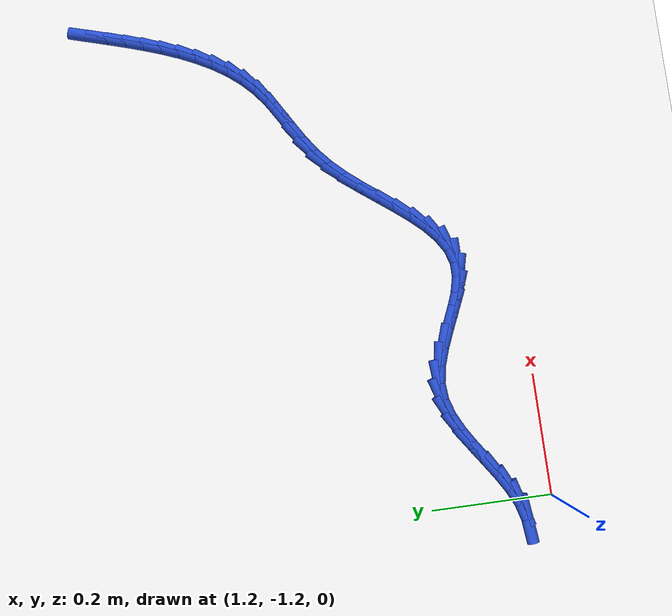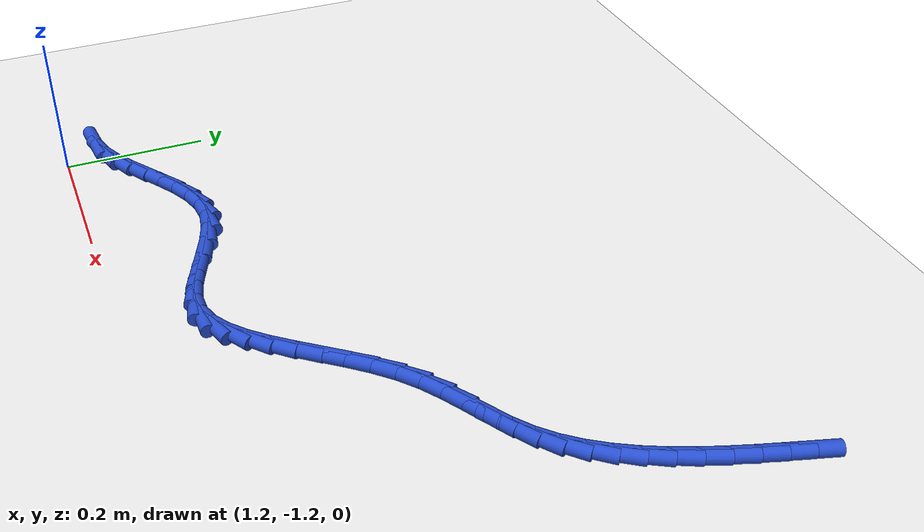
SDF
<sdf version="1.6">
 <world name="default">
  <model name="ground_plane">
   <static>1</static>
   <link name="link">
    <collision name="collision">
     <geometry><plane><normal>0 0 1</normal><size>100 100</size></plane></geometry>
     <surface><friction><ode><mu>100</mu><mu2>50</mu2></ode></friction></surface>
    </collision>
    <visual name="visual">
     <cast_shadows>0</cast_shadows>
     <geometry><plane><normal>0 0 1</normal><size>100 100</size></plane></geometry>
     <material>
      <script><uri>file://media/materials/scripts/gazebo.material</uri><name>Gazebo/WhiteGlow</name></script>
     </material>
    </visual>
   </link>
  </model>
  <model name="line">
   <link name="link_148">
    <pose>2.06817729955016 -0.5408963839304912 0.01 0 1.57 1.2876095410279262</pose>
    <collision name="collision">
     <geometry><cylinder><radius>0.01</radius><length>0.08</length></cylinder></geometry>
    </collision>
    <visual name="visual">
     <material>
      <script><name>Gazebo/Blue</name><uri>file://media/materials/scripts/gazebo.material</uri></script>
     </material>
     <geometry><cylinder><radius>0.01</radius><length>0.08</length></cylinder></geometry>
    </visual>
   </link>
   <link name="link_149">
    <pose>2.0597253267104407 -0.5699401861224751 0.01 0 1.57 1.2782421805037898</pose>
    <collision name="collision">
     <geometry><cylinder><radius>0.01</radius><length>0.08</length></cylinder></geometry>
    </collision>
    <visual name="visual">
     <material>
      <script><name>Gazebo/Blue</name><uri>file://media/materials/scripts/gazebo.material</uri></script>
     </material>
     <geometry><cylinder><radius>0.01</radius><length>0.08</length></cylinder></geometry>
    </visual>
   </link>
   <link name="link_150">
    <pose>2.050865640949135 -0.599355154524461 0.01 0 1.57 1.2595978632915334</pose>
    <collision name="collision">
     <geometry><cylinder><radius>0.01</radius><length>0.08</length></cylinder></geometry>
    </collision>
    <visual name="visual">
     <material>
      <script><name>Gazebo/Blue</name><uri>file://media/materials/scripts/gazebo.material</uri></script>
     </material>
     <geometry><cylinder><radius>0.01</radius><length>0.08</length></cylinder></geometry>
    </visual>
   </link>
   <link name="link_151">
    <pose>2.041386605100958 -0.628825237024056 0.01 0 1.57 1.230773028514112</pose>
    <collision name="collision">
     <geometry><cylinder><radius>0.01</radius><length>0.08</length></cylinder></geometry>
    </collision>
    <visual name="visual">
     <material>
      <script><name>Gazebo/Blue</name><uri>file://media/materials/scripts/gazebo.material</uri></script>
     </material>
     <geometry><cylinder><radius>0.01</radius><length>0.08</length></cylinder></geometry>
    </visual>
   </link>
   <link name="link_152">
    <pose>2.0310666903513983 -0.6579970612970379 0.01 0 1.57 1.1910686792397533</pose>
    <collision name="collision">
     <geometry><cylinder><radius>0.01</radius><length>0.08</length></cylinder></geometry>
    </collision>
    <visual name="visual">
     <material>
      <script><name>Gazebo/Blue</name><uri>file://media/materials/scripts/gazebo.material</uri></script>
     </material>
     <geometry><cylinder><radius>0.01</radius><length>0.08</length></cylinder></geometry>
    </visual>
   </link>
   <link name="link_153">
    <pose>2.0196843678859477 -0.6865172550191861 0.01 0 1.57 1.1393795194418803</pose>
    <collision name="collision">
     <geometry><cylinder><radius>0.01</radius><length>0.08</length></cylinder></geometry>
    </collision>
    <visual name="visual">
     <material>
      <script><name>Gazebo/Blue</name><uri>file://media/materials/scripts/gazebo.material</uri></script>
     </material>
     <geometry><cylinder><radius>0.01</radius><length>0.08</length></cylinder></geometry>
    </visual>
   </link>
   <link name="link_154">
    <pose>2.007018108890094 -0.7140324458662785 0.01 0 1.57 1.074271626142375</pose>
    <collision name="collision">
     <geometry><cylinder><radius>0.01</radius><length>0.08</length></cylinder></geometry>
    </collision>
    <visual name="visual">
     <material>
      <script><name>Gazebo/Blue</name><uri>file://media/materials/scripts/gazebo.material</uri></script>
     </material>
     <geometry><cylinder><radius>0.01</radius><length>0.08</length></cylinder></geometry>
    </visual>
   </link>
   <link name="link_155">
    <pose>1.9928463845493285 -0.7401892615140941 0.01 0 1.57 0.9941501336216209</pose>
    <collision name="collision">
     <geometry><cylinder><radius>0.01</radius><length>0.08</length></cylinder></geometry>
    </collision>
    <visual name="visual">
     <material>
      <script><name>Gazebo/Blue</name><uri>file://media/materials/scripts/gazebo.material</uri></script>
     </material>
     <geometry><cylinder><radius>0.01</radius><length>0.08</length></cylinder></geometry>
    </visual>
   </link>
   <link name="link_156">
    <pose>1.97694766604914 -0.7646343296384113 0.01 0 1.57 0.8976025912362171</pose>
    <collision name="collision">
     <geometry><cylinder><radius>0.01</radius><length>0.08</length></cylinder></geometry>
    </collision>
    <visual name="visual">
     <material>
      <script><name>Gazebo/Blue</name><uri>file://media/materials/scripts/gazebo.material</uri></script>
     </material>
     <geometry><cylinder><radius>0.01</radius><length>0.08</length></cylinder></geometry>
    </visual>
   </link>
   <link name="link_157">
    <pose>1.9591004245750194 -0.7870142779150086 0.01 0 1.57 0.7840014933543914</pose>
    <collision name="collision">
     <geometry><cylinder><radius>0.01</radius><length>0.08</length></cylinder></geometry>
    </collision>
    <visual name="visual">
     <material>
      <script><name>Gazebo/Blue</name><uri>file://media/materials/scripts/gazebo.material</uri></script>
     </material>
     <geometry><cylinder><radius>0.01</radius><length>0.08</length></cylinder></geometry>
    </visual>
   </link>
   <link name="link_158">
    <pose>1.9390831313124561 -0.8069757340196648 0.01 0 1.57 0.6611556048507727</pose>
    <collision name="collision">
     <geometry><cylinder><radius>0.01</radius><length>0.08</length></cylinder></geometry>
    </collision>
    <visual name="visual">
     <material>
      <script><name>Gazebo/Blue</name><uri>file://media/materials/scripts/gazebo.material</uri></script>
     </material>
     <geometry><cylinder><radius>0.01</radius><length>0.08</length></cylinder></geometry>
    </visual>
   </link>
   <link name="link_159">
    <pose>1.916775856257392 -0.8243298626034695 0.01 0 1.57 0.5737648672127535</pose>
    <collision name="collision">
     <geometry><cylinder><radius>0.01</radius><length>0.08</length></cylinder></geometry>
    </collision>
    <visual name="visual">
     <material>
      <script><name>Gazebo/Blue</name><uri>file://media/materials/scripts/gazebo.material</uri></script>
     </material>
     <geometry><cylinder><radius>0.01</radius><length>0.08</length></cylinder></geometry>
    </visual>
   </link>
   <link name="link_160">
    <pose>1.892683878575972 -0.8399003404261105 0.01 0 1.57 0.5379317287559627</pose>
    <collision name="collision">
     <geometry><cylinder><radius>0.01</radius><length>0.08</length></cylinder></geometry>
    </collision>
    <visual name="visual">
     <material>
      <script><name>Gazebo/Blue</name><uri>file://media/materials/scripts/gazebo.material</uri></script>
     </material>
     <geometry><cylinder><radius>0.01</radius><length>0.08</length></cylinder></geometry>
    </visual>
   </link>
   <link name="link_161">
    <pose>1.8675501129362098 -0.8548956895671171 0.01 0 1.57 0.5510534344741254</pose>
    <collision name="collision">
     <geometry><cylinder><radius>0.01</radius><length>0.08</length></cylinder></geometry>
    </collision>
    <visual name="visual">
     <material>
      <script><name>Gazebo/Blue</name><uri>file://media/materials/scripts/gazebo.material</uri></script>
     </material>
     <geometry><cylinder><radius>0.01</radius><length>0.08</length></cylinder></geometry>
    </visual>
   </link>
   <link name="link_162">
    <pose>1.842117933868923 -0.870525176843428 0.01 0 1.57 0.6102380223594478</pose>
    <collision name="collision">
     <geometry><cylinder><radius>0.01</radius><length>0.08</length></cylinder></geometry>
    </collision>
    <visual name="visual">
     <material>
      <script><name>Gazebo/Blue</name><uri>file://media/materials/scripts/gazebo.material</uri></script>
     </material>
     <geometry><cylinder><radius>0.01</radius><length>0.08</length></cylinder></geometry>
    </visual>
   </link>
   <link name="link_163">
    <pose>1.817130715904929 -0.8879980690719813 0.01 0 1.57 0.7107947124449568</pose>
    <collision name="collision">
     <geometry><cylinder><radius>0.01</radius><length>0.08</length></cylinder></geometry>
    </collision>
    <visual name="visual">
     <material>
      <script><name>Gazebo/Blue</name><uri>file://media/materials/scripts/gazebo.material</uri></script>
     </material>
     <geometry><cylinder><radius>0.01</radius><length>0.08</length></cylinder></geometry>
    </visual>
   </link>
   <link name="link_164">
    <pose>1.7933196916733427 -0.9084972524151845 0.01 0 1.57 0.8145688862936674</pose>
    <collision name="collision">
     <geometry><cylinder><radius>0.01</radius><length>0.08</length></cylinder></geometry>
    </collision>
    <visual name="visual">
     <material>
      <script><name>Gazebo/Blue</name><uri>file://media/materials/scripts/gazebo.material</uri></script>
     </material>
     <geometry><cylinder><radius>0.01</radius><length>0.08</length></cylinder></geometry>
    </visual>
   </link>
   <link name="link_165">
    <pose>1.7709557838330996 -0.9322054996596599 0.01 0 1.57 0.8823943114412545</pose>
    <collision name="collision">
     <geometry><cylinder><radius>0.01</radius><length>0.08</length></cylinder></geometry>
    </collision>
    <visual name="visual">
     <material>
      <script><name>Gazebo/Blue</name><uri>file://media/materials/scripts/gazebo.material</uri></script>
     </material>
     <geometry><cylinder><radius>0.01</radius><length>0.08</length></cylinder></geometry>
    </visual>
   </link>
   <link name="link_166">
    <pose>1.7497186416888002 -0.9580209266679415 0.01 0 1.57 0.9173796956680025</pose>
    <collision name="collision">
     <geometry><cylinder><radius>0.01</radius><length>0.08</length></cylinder></geometry>
    </collision>
    <visual name="visual">
     <material>
      <script><name>Gazebo/Blue</name><uri>file://media/materials/scripts/gazebo.material</uri></script>
     </material>
     <geometry><cylinder><radius>0.01</radius><length>0.08</length></cylinder></geometry>
    </visual>
   </link>
   <link name="link_167">
    <pose>1.7292490641588563 -0.9847572392454312 0.01 0 1.57 0.9222843737282216</pose>
    <collision name="collision">
     <geometry><cylinder><radius>0.01</radius><length>0.08</length></cylinder></geometry>
    </collision>
    <visual name="visual">
     <material>
      <script><name>Gazebo/Blue</name><uri>file://media/materials/scripts/gazebo.material</uri></script>
     </material>
     <geometry><cylinder><radius>0.01</radius><length>0.08</length></cylinder></geometry>
    </visual>
   </link>
   <link name="link_168">
    <pose>1.7091878501616802 -1.0112281431975316 0.01 0 1.57 0.8961360439196275</pose>
    <collision name="collision">
     <geometry><cylinder><radius>0.01</radius><length>0.08</length></cylinder></geometry>
    </collision>
    <visual name="visual">
     <material>
      <script><name>Gazebo/Blue</name><uri>file://media/materials/scripts/gazebo.material</uri></script>
     </material>
     <geometry><cylinder><radius>0.01</radius><length>0.08</length></cylinder></geometry>
    </visual>
   </link>
   <link name="link_169">
    <pose>1.689175798615683 -1.036247344329645 0.01 0 1.57 0.8335799331926955</pose>
    <collision name="collision">
     <geometry><cylinder><radius>0.01</radius><length>0.08</length></cylinder></geometry>
    </collision>
    <visual name="visual">
     <material>
      <script><name>Gazebo/Blue</name><uri>file://media/materials/scripts/gazebo.material</uri></script>
     </material>
     <geometry><cylinder><radius>0.01</radius><length>0.08</length></cylinder></geometry>
    </visual>
   </link>
   <link name="link_170">
    <pose>1.668853708439277 -1.0586285484471736 0.01 0 1.57 0.7239201043637374</pose>
    <collision name="collision">
     <geometry><cylinder><radius>0.01</radius><length>0.08</length></cylinder></geometry>
    </collision>
    <visual name="visual">
     <material>
      <script><name>Gazebo/Blue</name><uri>file://media/materials/scripts/gazebo.material</uri></script>
     </material>
     <geometry><cylinder><radius>0.01</radius><length>0.08</length></cylinder></geometry>
    </visual>
   </link>
   <link name="link_171">
    <pose>1.647862378550875 -1.07718546135552 0.01 0 1.57 0.5515133099981872</pose>
    <collision name="collision">
     <geometry><cylinder><radius>0.01</radius><length>0.08</length></cylinder></geometry>
    </collision>
    <visual name="visual">
     <material>
      <script><name>Gazebo/Blue</name><uri>file://media/materials/scripts/gazebo.material</uri></script>
     </material>
     <geometry><cylinder><radius>0.01</radius><length>0.08</length></cylinder></geometry>
    </visual>
   </link>
   <link name="link_172">
    <pose>1.6258426078688883 -1.0907317888600867 0.01 0 1.57 0.3042321803164224</pose>
    <collision name="collision">
     <geometry><cylinder><radius>0.01</radius><length>0.08</length></cylinder></geometry>
    </collision>
    <visual name="visual">
     <material>
      <script><name>Gazebo/Blue</name><uri>file://media/materials/scripts/gazebo.material</uri></script>
     </material>
     <geometry><cylinder><radius>0.01</radius><length>0.08</length></cylinder></geometry>
    </visual>
   </link>
   <link name="link_173">
    <pose>1.6024351953117284 -1.0980812367662756 0.01 0 1.57 0.003037249838718808</pose>
    <collision name="collision">
     <geometry><cylinder><radius>0.01</radius><length>0.08</length></cylinder></geometry>
    </collision>
    <visual name="visual">
     <material>
      <script><name>Gazebo/Blue</name><uri>file://media/materials/scripts/gazebo.material</uri></script>
     </material>
     <geometry><cylinder><radius>0.01</radius><length>0.08</length></cylinder></geometry>
    </visual>
   </link>
   <link name="link_174">
    <pose>1.5773054229399746 -1.0981575623980573 0.01 0 1.57 -0.23627358548678146</pose>
    <collision name="collision">
     <geometry><cylinder><radius>0.01</radius><length>0.08</length></cylinder></geometry>
    </collision>
    <visual name="visual">
     <material>
      <script><name>Gazebo/Blue</name><uri>file://media/materials/scripts/gazebo.material</uri></script>
     </material>
     <geometry><cylinder><radius>0.01</radius><length>0.08</length></cylinder></geometry>
    </visual>
   </link>
   <link name="link_175">
    <pose>1.5505245795131652 -1.0917095197839155 0.01 0 1.57 -0.36537581121351886</pose>
    <collision name="collision">
     <geometry><cylinder><radius>0.01</radius><length>0.08</length></cylinder></geometry>
    </collision>
    <visual name="visual">
     <material>
      <script><name>Gazebo/Blue</name><uri>file://media/materials/scripts/gazebo.material</uri></script>
     </material>
     <geometry><cylinder><radius>0.01</radius><length>0.08</length></cylinder></geometry>
    </visual>
   </link>
   <link name="link_176">
    <pose>1.5224981155703379 -1.0809879173467984 0.01 0 1.57 -0.4145857164608505</pose>
    <collision name="collision">
     <geometry><cylinder><radius>0.01</radius><length>0.08</length></cylinder></geometry>
    </collision>
    <visual name="visual">
     <material>
      <script><name>Gazebo/Blue</name><uri>file://media/materials/scripts/gazebo.material</uri></script>
     </material>
     <geometry><cylinder><radius>0.01</radius><length>0.08</length></cylinder></geometry>
    </visual>
   </link>
   <link name="link_177">
    <pose>1.493641424763629 -1.068288257719605 0.01 0 1.57 -0.4001858287890123</pose>
    <collision name="collision">
     <geometry><cylinder><radius>0.01</radius><length>0.08</length></cylinder></geometry>
    </collision>
    <visual name="visual">
     <material>
      <script><name>Gazebo/Blue</name><uri>file://media/materials/scripts/gazebo.material</uri></script>
     </material>
     <geometry><cylinder><radius>0.01</radius><length>0.08</length></cylinder></geometry>
    </visual>
   </link>
   <link name="link_178">
    <pose>1.4643699007451794 -1.0559060435352365 0.01 0 1.57 -0.3221280285919404</pose>
    <collision name="collision">
     <geometry><cylinder><radius>0.01</radius><length>0.08</length></cylinder></geometry>
    </collision>
    <visual name="visual">
     <material>
      <script><name>Gazebo/Blue</name><uri>file://media/materials/scripts/gazebo.material</uri></script>
     </material>
     <geometry><cylinder><radius>0.01</radius><length>0.08</length></cylinder></geometry>
    </visual>
   </link>
   <link name="link_179">
    <pose>1.4350989371671274 -1.0461367774265928 0.01 0 1.57 -0.16688968018332417</pose>
    <collision name="collision">
     <geometry><cylinder><radius>0.01</radius><length>0.08</length></cylinder></geometry>
    </collision>
    <visual name="visual">
     <material>
      <script><name>Gazebo/Blue</name><uri>file://media/materials/scripts/gazebo.material</uri></script>
     </material>
     <geometry><cylinder><radius>0.01</radius><length>0.08</length></cylinder></geometry>
    </visual>
   </link>
   <link name="link_180">
    <pose>1.4062439276816123 -1.0412759620265746 0.01 0 1.57 0.07268201478015449</pose>
    <collision name="collision">
     <geometry><cylinder><radius>0.01</radius><length>0.08</length></cylinder></geometry>
    </collision>
    <visual name="visual">
     <material>
      <script><name>Gazebo/Blue</name><uri>file://media/materials/scripts/gazebo.material</uri></script>
     </material>
     <geometry><cylinder><radius>0.01</radius><length>0.08</length></cylinder></geometry>
    </visual>
   </link>
   <link name="link_181">
    <pose>1.3781767141221546 -1.0433195434509877 0.01 0 1.57 0.3018078780797524</pose>
    <collision name="collision">
     <geometry><cylinder><radius>0.01</radius><length>0.08</length></cylinder></geometry>
    </collision>
    <visual name="visual">
     <material>
      <script><name>Gazebo/Blue</name><uri>file://media/materials/scripts/gazebo.material</uri></script>
     </material>
     <geometry><cylinder><radius>0.01</radius><length>0.08</length></cylinder></geometry>
    </visual>
   </link>
   <link name="link_182">
    <pose>1.350912074262587 -1.0518075229322612 0.01 0 1.57 0.4623880587355059</pose>
    <collision name="collision">
     <geometry><cylinder><radius>0.01</radius><length>0.08</length></cylinder></geometry>
    </collision>
    <visual name="visual">
     <material>
      <script><name>Gazebo/Blue</name><uri>file://media/materials/scripts/gazebo.material</uri></script>
     </material>
     <geometry><cylinder><radius>0.01</radius><length>0.08</length></cylinder></geometry>
    </visual>
   </link>
   <link name="link_183">
    <pose>1.3242898611427758 -1.065076740830955 0.01 0 1.57 0.5597219335860569</pose>
    <collision name="collision">
     <geometry><cylinder><radius>0.01</radius><length>0.08</length></cylinder></geometry>
    </collision>
    <visual name="visual">
     <material>
      <script><name>Gazebo/Blue</name><uri>file://media/materials/scripts/gazebo.material</uri></script>
     </material>
     <geometry><cylinder><radius>0.01</radius><length>0.08</length></cylinder></geometry>
    </visual>
   </link>
   <link name="link_184">
    <pose>1.298148728351937 -1.0814557874902946 0.01 0 1.57 0.6040013577048854</pose>
    <collision name="collision">
     <geometry><cylinder><radius>0.01</radius><length>0.08</length></cylinder></geometry>
    </collision>
    <visual name="visual">
     <material>
      <script><name>Gazebo/Blue</name><uri>file://media/materials/scripts/gazebo.material</uri></script>
     </material>
     <geometry><cylinder><radius>0.01</radius><length>0.08</length></cylinder></geometry>
    </visual>
   </link>
   <link name="link_185">
    <pose>1.272327329479289 -1.0992732532535059 0.01 0 1.57 0.6007286332540444</pose>
    <collision name="collision">
     <geometry><cylinder><radius>0.01</radius><length>0.08</length></cylinder></geometry>
    </collision>
    <visual name="visual">
     <material>
      <script><name>Gazebo/Blue</name><uri>file://media/materials/scripts/gazebo.material</uri></script>
     </material>
     <geometry><cylinder><radius>0.01</radius><length>0.08</length></cylinder></geometry>
    </visual>
   </link>
   <link name="link_186">
    <pose>1.2466643181140484 -1.1168577284638141 0.01 0 1.57 0.5484164991293482</pose>
    <collision name="collision">
     <geometry><cylinder><radius>0.01</radius><length>0.08</length></cylinder></geometry>
    </collision>
    <visual name="visual">
     <material>
      <script><name>Gazebo/Blue</name><uri>file://media/materials/scripts/gazebo.material</uri></script>
     </material>
     <geometry><cylinder><radius>0.01</radius><length>0.08</length></cylinder></geometry>
    </visual>
   </link>
   <link name="link_187">
    <pose>1.2209983478454327 -1.132537803464446 0.01 0 1.57 0.4382198693843099</pose>
    <collision name="collision">
     <geometry><cylinder><radius>0.01</radius><length>0.08</length></cylinder></geometry>
    </collision>
    <visual name="visual">
     <material>
      <script><name>Gazebo/Blue</name><uri>file://media/materials/scripts/gazebo.material</uri></script>
     </material>
     <geometry><cylinder><radius>0.01</radius><length>0.08</length></cylinder></geometry>
    </visual>
   </link>
   <link name="link_188">
    <pose>1.1951680722819011 -1.144642068900651 0.01 0 1.57 0.2704018744459849</pose>
    <collision name="collision">
     <geometry><cylinder><radius>0.01</radius><length>0.08</length></cylinder></geometry>
    </collision>
    <visual name="visual">
     <material>
      <script><name>Gazebo/Blue</name><uri>file://media/materials/scripts/gazebo.material</uri></script>
     </material>
     <geometry><cylinder><radius>0.01</radius><length>0.08</length></cylinder></geometry>
    </visual>
   </link>
   <link name="link_189">
    <pose>1.1690367571525078 -1.1518854300935057 0.01 0 1.57 0.09790243592013124</pose>
    <collision name="collision">
     <geometry><cylinder><radius>0.01</radius><length>0.08</length></cylinder></geometry>
    </collision>
    <visual name="visual">
     <material>
      <script><name>Gazebo/Blue</name><uri>file://media/materials/scripts/gazebo.material</uri></script>
     </material>
     <geometry><cylinder><radius>0.01</radius><length>0.08</length></cylinder></geometry>
    </visual>
   </link>
  </model>
 </world>
</sdf>
